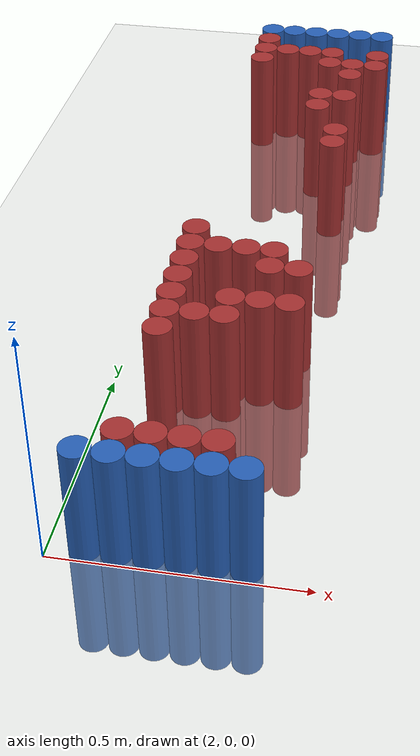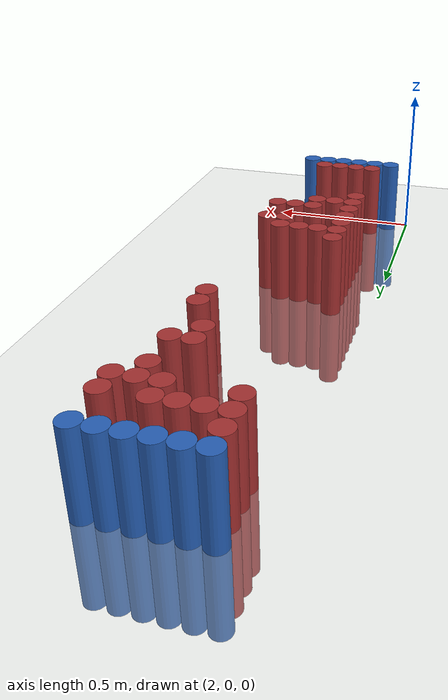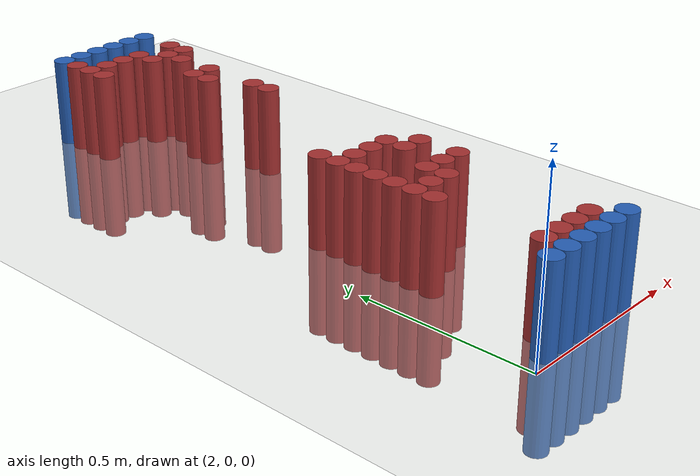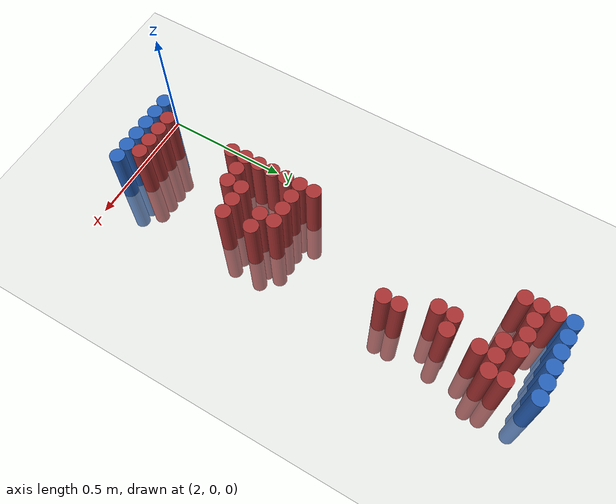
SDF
<sdf version="1.6">
 <world name="default">
  <model name="ground_plane">
   <static>1</static>
   <link name="link">
    <collision name="collision">
     <geometry><plane><normal>0 0 1</normal><size>100 100</size></plane></geometry>
     <surface><friction><ode><mu>100</mu><mu2>50</mu2></ode></friction></surface>
    </collision>
    <visual name="visual">
     <cast_shadows>0</cast_shadows>
     <geometry><plane><normal>0 0 1</normal><size>100 100</size></plane></geometry>
     <material>
      <script><uri>file://media/materials/scripts/gazebo.material</uri><name>Gazebo/Grey</name></script>
     </material>
    </visual>
   </link>
  </model>
  <model name="unit_cylinder_96">
   <static>1</static>
   <pose>2.130000 1.770000 0.000000 0.000000 0.000000 0.000000</pose>
   <link name="link">
    <inertial>
     <mass>1</mass>
     <inertia><ixx>0.145833</ixx><ixy>0</ixy><ixz>0</ixz><iyy>0.145833</iyy><iyz>0</iyz><izz>0.125</izz></inertia>
    </inertial>
    <collision name="collision">
     <geometry><cylinder><radius>0.030000</radius><length>0.5</length></cylinder></geometry>
    </collision>
    <visual name="visual">
     <geometry><cylinder><radius>0.030000</radius><length>0.5</length></cylinder></geometry>
     <material>
      <ambient>0.152000 0.379000 0.720000 1</ambient>
      <diffuse>0.152000 0.379000 0.720000 1</diffuse>
     </material>
     <material>
      <script><name>Gazebo/Grey</name><uri>file://media/materials/scripts/gazebo.material</uri></script>
     </material>
    </visual>
   </link>
  </model>
  <model name="unit_cylinder_97">
   <static>1</static>
   <pose>2.190000 1.770000 0.000000 0.000000 0.000000 0.000000</pose>
   <link name="link">
    <inertial>
     <mass>1</mass>
     <inertia><ixx>0.145833</ixx><ixy>0</ixy><ixz>0</ixz><iyy>0.145833</iyy><iyz>0</iyz><izz>0.125</izz></inertia>
    </inertial>
    <collision name="collision">
     <geometry><cylinder><radius>0.030000</radius><length>0.5</length></cylinder></geometry>
    </collision>
    <visual name="visual">
     <geometry><cylinder><radius>0.030000</radius><length>0.5</length></cylinder></geometry>
     <material>
      <ambient>0.152000 0.379000 0.720000 1</ambient>
      <diffuse>0.152000 0.379000 0.720000 1</diffuse>
     </material>
     <material>
      <script><name>Gazebo/Grey</name><uri>file://media/materials/scripts/gazebo.material</uri></script>
     </material>
    </visual>
   </link>
  </model>
  <model name="unit_cylinder_98">
   <static>1</static>
   <pose>2.250000 1.770000 0.000000 0.000000 0.000000 0.000000</pose>
   <link name="link">
    <inertial>
     <mass>1</mass>
     <inertia><ixx>0.145833</ixx><ixy>0</ixy><ixz>0</ixz><iyy>0.145833</iyy><iyz>0</iyz><izz>0.125</izz></inertia>
    </inertial>
    <collision name="collision">
     <geometry><cylinder><radius>0.030000</radius><length>0.5</length></cylinder></geometry>
    </collision>
    <visual name="visual">
     <geometry><cylinder><radius>0.030000</radius><length>0.5</length></cylinder></geometry>
     <material>
      <ambient>0.152000 0.379000 0.720000 1</ambient>
      <diffuse>0.152000 0.379000 0.720000 1</diffuse>
     </material>
     <material>
      <script><name>Gazebo/Grey</name><uri>file://media/materials/scripts/gazebo.material</uri></script>
     </material>
    </visual>
   </link>
  </model>
  <model name="unit_cylinder_99">
   <static>1</static>
   <pose>2.310000 1.770000 0.000000 0.000000 0.000000 0.000000</pose>
   <link name="link">
    <inertial>
     <mass>1</mass>
     <inertia><ixx>0.145833</ixx><ixy>0</ixy><ixz>0</ixz><iyy>0.145833</iyy><iyz>0</iyz><izz>0.125</izz></inertia>
    </inertial>
    <collision name="collision">
     <geometry><cylinder><radius>0.030000</radius><length>0.5</length></cylinder></geometry>
    </collision>
    <visual name="visual">
     <geometry><cylinder><radius>0.030000</radius><length>0.5</length></cylinder></geometry>
     <material>
      <ambient>0.152000 0.379000 0.720000 1</ambient>
      <diffuse>0.152000 0.379000 0.720000 1</diffuse>
     </material>
     <material>
      <script><name>Gazebo/Grey</name><uri>file://media/materials/scripts/gazebo.material</uri></script>
     </material>
    </visual>
   </link>
  </model>
  <model name="unit_cylinder_100">
   <static>1</static>
   <pose>2.370000 1.770000 0.000000 0.000000 0.000000 0.000000</pose>
   <link name="link">
    <inertial>
     <mass>1</mass>
     <inertia><ixx>0.145833</ixx><ixy>0</ixy><ixz>0</ixz><iyy>0.145833</iyy><iyz>0</iyz><izz>0.125</izz></inertia>
    </inertial>
    <collision name="collision">
     <geometry><cylinder><radius>0.030000</radius><length>0.5</length></cylinder></geometry>
    </collision>
    <visual name="visual">
     <geometry><cylinder><radius>0.030000</radius><length>0.5</length></cylinder></geometry>
     <material>
      <ambient>0.152000 0.379000 0.720000 1</ambient>
      <diffuse>0.152000 0.379000 0.720000 1</diffuse>
     </material>
     <material>
      <script><name>Gazebo/Grey</name><uri>file://media/materials/scripts/gazebo.material</uri></script>
     </material>
    </visual>
   </link>
  </model>
  <model name="unit_cylinder_101">
   <static>1</static>
   <pose>2.430000 1.770000 0.000000 0.000000 0.000000 0.000000</pose>
   <link name="link">
    <inertial>
     <mass>1</mass>
     <inertia><ixx>0.145833</ixx><ixy>0</ixy><ixz>0</ixz><iyy>0.145833</iyy><iyz>0</iyz><izz>0.125</izz></inertia>
    </inertial>
    <collision name="collision">
     <geometry><cylinder><radius>0.030000</radius><length>0.5</length></cylinder></geometry>
    </collision>
    <visual name="visual">
     <geometry><cylinder><radius>0.030000</radius><length>0.5</length></cylinder></geometry>
     <material>
      <ambient>0.152000 0.379000 0.720000 1</ambient>
      <diffuse>0.152000 0.379000 0.720000 1</diffuse>
     </material>
     <material>
      <script><name>Gazebo/Grey</name><uri>file://media/materials/scripts/gazebo.material</uri></script>
     </material>
    </visual>
   </link>
  </model>
  <model name="unit_cylinder_125">
   <static>1</static>
   <pose>2.130000 1.710000 0.000000 0.000000 0.000000 0.000000</pose>
   <link name="link">
    <inertial>
     <mass>1</mass>
     <inertia><ixx>0.145833</ixx><ixy>0</ixy><ixz>0</ixz><iyy>0.145833</iyy><iyz>0</iyz><izz>0.125</izz></inertia>
    </inertial>
    <collision name="collision">
     <geometry><cylinder><radius>0.030000</radius><length>0.5</length></cylinder></geometry>
    </collision>
    <visual name="visual">
     <geometry><cylinder><radius>0.030000</radius><length>0.5</length></cylinder></geometry>
     <material>
      <ambient>0.648000 0.192000 0.192000 1</ambient>
      <diffuse>0.648000 0.192000 0.192000 1</diffuse>
     </material>
     <material>
      <script><name>Gazebo/Grey</name><uri>file://media/materials/scripts/gazebo.material</uri></script>
     </material>
    </visual>
   </link>
  </model>
  <model name="unit_cylinder_137">
   <static>1</static>
   <pose>2.130000 1.650000 0.000000 0.000000 0.000000 0.000000</pose>
   <link name="link">
    <inertial>
     <mass>1</mass>
     <inertia><ixx>0.145833</ixx><ixy>0</ixy><ixz>0</ixz><iyy>0.145833</iyy><iyz>0</iyz><izz>0.125</izz></inertia>
    </inertial>
    <collision name="collision">
     <geometry><cylinder><radius>0.030000</radius><length>0.5</length></cylinder></geometry>
    </collision>
    <visual name="visual">
     <geometry><cylinder><radius>0.030000</radius><length>0.5</length></cylinder></geometry>
     <material>
      <ambient>0.648000 0.192000 0.192000 1</ambient>
      <diffuse>0.648000 0.192000 0.192000 1</diffuse>
     </material>
     <material>
      <script><name>Gazebo/Grey</name><uri>file://media/materials/scripts/gazebo.material</uri></script>
     </material>
    </visual>
   </link>
  </model>
  <model name="unit_cylinder_138">
   <static>1</static>
   <pose>2.190000 1.650000 0.000000 0.000000 0.000000 0.000000</pose>
   <link name="link">
    <inertial>
     <mass>1</mass>
     <inertia><ixx>0.145833</ixx><ixy>0</ixy><ixz>0</ixz><iyy>0.145833</iyy><iyz>0</iyz><izz>0.125</izz></inertia>
    </inertial>
    <collision name="collision">
     <geometry><cylinder><radius>0.030000</radius><length>0.5</length></cylinder></geometry>
    </collision>
    <visual name="visual">
     <geometry><cylinder><radius>0.030000</radius><length>0.5</length></cylinder></geometry>
     <material>
      <ambient>0.648000 0.192000 0.192000 1</ambient>
      <diffuse>0.648000 0.192000 0.192000 1</diffuse>
     </material>
     <material>
      <script><name>Gazebo/Grey</name><uri>file://media/materials/scripts/gazebo.material</uri></script>
     </material>
    </visual>
   </link>
  </model>
  <model name="unit_cylinder_139">
   <static>1</static>
   <pose>2.250000 1.650000 0.000000 0.000000 0.000000 0.000000</pose>
   <link name="link">
    <inertial>
     <mass>1</mass>
     <inertia><ixx>0.145833</ixx><ixy>0</ixy><ixz>0</ixz><iyy>0.145833</iyy><iyz>0</iyz><izz>0.125</izz></inertia>
    </inertial>
    <collision name="collision">
     <geometry><cylinder><radius>0.030000</radius><length>0.5</length></cylinder></geometry>
    </collision>
    <visual name="visual">
     <geometry><cylinder><radius>0.030000</radius><length>0.5</length></cylinder></geometry>
     <material>
      <ambient>0.648000 0.192000 0.192000 1</ambient>
      <diffuse>0.648000 0.192000 0.192000 1</diffuse>
     </material>
     <material>
      <script><name>Gazebo/Grey</name><uri>file://media/materials/scripts/gazebo.material</uri></script>
     </material>
    </visual>
   </link>
  </model>
  <model name="unit_cylinder_140">
   <static>1</static>
   <pose>2.310000 1.650000 0.000000 0.000000 0.000000 0.000000</pose>
   <link name="link">
    <inertial>
     <mass>1</mass>
     <inertia><ixx>0.145833</ixx><ixy>0</ixy><ixz>0</ixz><iyy>0.145833</iyy><iyz>0</iyz><izz>0.125</izz></inertia>
    </inertial>
    <collision name="collision">
     <geometry><cylinder><radius>0.030000</radius><length>0.5</length></cylinder></geometry>
    </collision>
    <visual name="visual">
     <geometry><cylinder><radius>0.030000</radius><length>0.5</length></cylinder></geometry>
     <material>
      <ambient>0.648000 0.192000 0.192000 1</ambient>
      <diffuse>0.648000 0.192000 0.192000 1</diffuse>
     </material>
     <material>
      <script><name>Gazebo/Grey</name><uri>file://media/materials/scripts/gazebo.material</uri></script>
     </material>
    </visual>
   </link>
  </model>
  <model name="unit_cylinder_141">
   <static>1</static>
   <pose>2.430000 1.650000 0.000000 0.000000 0.000000 0.000000</pose>
   <link name="link">
    <inertial>
     <mass>1</mass>
     <inertia><ixx>0.145833</ixx><ixy>0</ixy><ixz>0</ixz><iyy>0.145833</iyy><iyz>0</iyz><izz>0.125</izz></inertia>
    </inertial>
    <collision name="collision">
     <geometry><cylinder><radius>0.030000</radius><length>0.5</length></cylinder></geometry>
    </collision>
    <visual name="visual">
     <geometry><cylinder><radius>0.030000</radius><length>0.5</length></cylinder></geometry>
     <material>
      <ambient>0.648000 0.192000 0.192000 1</ambient>
      <diffuse>0.648000 0.192000 0.192000 1</diffuse>
     </material>
     <material>
      <script><name>Gazebo/Grey</name><uri>file://media/materials/scripts/gazebo.material</uri></script>
     </material>
    </visual>
   </link>
  </model>
  <model name="unit_cylinder_150">
   <static>1</static>
   <pose>2.130000 1.590000 0.000000 0.000000 0.000000 0.000000</pose>
   <link name="link">
    <inertial>
     <mass>1</mass>
     <inertia><ixx>0.145833</ixx><ixy>0</ixy><ixz>0</ixz><iyy>0.145833</iyy><iyz>0</iyz><izz>0.125</izz></inertia>
    </inertial>
    <collision name="collision">
     <geometry><cylinder><radius>0.030000</radius><length>0.5</length></cylinder></geometry>
    </collision>
    <visual name="visual">
     <geometry><cylinder><radius>0.030000</radius><length>0.5</length></cylinder></geometry>
     <material>
      <ambient>0.648000 0.192000 0.192000 1</ambient>
      <diffuse>0.648000 0.192000 0.192000 1</diffuse>
     </material>
     <material>
      <script><name>Gazebo/Grey</name><uri>file://media/materials/scripts/gazebo.material</uri></script>
     </material>
    </visual>
   </link>
  </model>
  <model name="unit_cylinder_151">
   <static>1</static>
   <pose>2.310000 1.590000 0.000000 0.000000 0.000000 0.000000</pose>
   <link name="link">
    <inertial>
     <mass>1</mass>
     <inertia><ixx>0.145833</ixx><ixy>0</ixy><ixz>0</ixz><iyy>0.145833</iyy><iyz>0</iyz><izz>0.125</izz></inertia>
    </inertial>
    <collision name="collision">
     <geometry><cylinder><radius>0.030000</radius><length>0.5</length></cylinder></geometry>
    </collision>
    <visual name="visual">
     <geometry><cylinder><radius>0.030000</radius><length>0.5</length></cylinder></geometry>
     <material>
      <ambient>0.648000 0.192000 0.192000 1</ambient>
      <diffuse>0.648000 0.192000 0.192000 1</diffuse>
     </material>
     <material>
      <script><name>Gazebo/Grey</name><uri>file://media/materials/scripts/gazebo.material</uri></script>
     </material>
    </visual>
   </link>
  </model>
  <model name="unit_cylinder_152">
   <static>1</static>
   <pose>2.370000 1.590000 0.000000 0.000000 0.000000 0.000000</pose>
   <link name="link">
    <inertial>
     <mass>1</mass>
     <inertia><ixx>0.145833</ixx><ixy>0</ixy><ixz>0</ixz><iyy>0.145833</iyy><iyz>0</iyz><izz>0.125</izz></inertia>
    </inertial>
    <collision name="collision">
     <geometry><cylinder><radius>0.030000</radius><length>0.5</length></cylinder></geometry>
    </collision>
    <visual name="visual">
     <geometry><cylinder><radius>0.030000</radius><length>0.5</length></cylinder></geometry>
     <material>
      <ambient>0.648000 0.192000 0.192000 1</ambient>
      <diffuse>0.648000 0.192000 0.192000 1</diffuse>
     </material>
     <material>
      <script><name>Gazebo/Grey</name><uri>file://media/materials/scripts/gazebo.material</uri></script>
     </material>
    </visual>
   </link>
  </model>
  <model name="unit_cylinder_153">
   <static>1</static>
   <pose>2.430000 1.590000 0.000000 0.000000 0.000000 0.000000</pose>
   <link name="link">
    <inertial>
     <mass>1</mass>
     <inertia><ixx>0.145833</ixx><ixy>0</ixy><ixz>0</ixz><iyy>0.145833</iyy><iyz>0</iyz><izz>0.125</izz></inertia>
    </inertial>
    <collision name="collision">
     <geometry><cylinder><radius>0.030000</radius><length>0.5</length></cylinder></geometry>
    </collision>
    <visual name="visual">
     <geometry><cylinder><radius>0.030000</radius><length>0.5</length></cylinder></geometry>
     <material>
      <ambient>0.648000 0.192000 0.192000 1</ambient>
      <diffuse>0.648000 0.192000 0.192000 1</diffuse>
     </material>
     <material>
      <script><name>Gazebo/Grey</name><uri>file://media/materials/scripts/gazebo.material</uri></script>
     </material>
    </visual>
   </link>
  </model>
  <model name="unit_cylinder_159">
   <static>1</static>
   <pose>2.370000 1.530000 0.000000 0.000000 0.000000 0.000000</pose>
   <link name="link">
    <inertial>
     <mass>1</mass>
     <inertia><ixx>0.145833</ixx><ixy>0</ixy><ixz>0</ixz><iyy>0.145833</iyy><iyz>0</iyz><izz>0.125</izz></inertia>
    </inertial>
    <collision name="collision">
     <geometry><cylinder><radius>0.030000</radius><length>0.5</length></cylinder></geometry>
    </collision>
    <visual name="visual">
     <geometry><cylinder><radius>0.030000</radius><length>0.5</length></cylinder></geometry>
     <material>
      <ambient>0.648000 0.192000 0.192000 1</ambient>
      <diffuse>0.648000 0.192000 0.192000 1</diffuse>
     </material>
     <material>
      <script><name>Gazebo/Grey</name><uri>file://media/materials/scripts/gazebo.material</uri></script>
     </material>
    </visual>
   </link>
  </model>
  <model name="unit_cylinder_176">
   <static>1</static>
   <pose>2.310000 1.410000 0.000000 0.000000 0.000000 0.000000</pose>
   <link name="link">
    <inertial>
     <mass>1</mass>
     <inertia><ixx>0.145833</ixx><ixy>0</ixy><ixz>0</ixz><iyy>0.145833</iyy><iyz>0</iyz><izz>0.125</izz></inertia>
    </inertial>
    <collision name="collision">
     <geometry><cylinder><radius>0.030000</radius><length>0.5</length></cylinder></geometry>
    </collision>
    <visual name="visual">
     <geometry><cylinder><radius>0.030000</radius><length>0.5</length></cylinder></geometry>
     <material>
      <ambient>0.648000 0.192000 0.192000 1</ambient>
      <diffuse>0.648000 0.192000 0.192000 1</diffuse>
     </material>
     <material>
      <script><name>Gazebo/Grey</name><uri>file://media/materials/scripts/gazebo.material</uri></script>
     </material>
    </visual>
   </link>
  </model>
  <model name="unit_cylinder_177">
   <static>1</static>
   <pose>2.370000 1.410000 0.000000 0.000000 0.000000 0.000000</pose>
   <link name="link">
    <inertial>
     <mass>1</mass>
     <inertia><ixx>0.145833</ixx><ixy>0</ixy><ixz>0</ixz><iyy>0.145833</iyy><iyz>0</iyz><izz>0.125</izz></inertia>
    </inertial>
    <collision name="collision">
     <geometry><cylinder><radius>0.030000</radius><length>0.5</length></cylinder></geometry>
    </collision>
    <visual name="visual">
     <geometry><cylinder><radius>0.030000</radius><length>0.5</length></cylinder></geometry>
     <material>
      <ambient>0.648000 0.192000 0.192000 1</ambient>
      <diffuse>0.648000 0.192000 0.192000 1</diffuse>
     </material>
     <material>
      <script><name>Gazebo/Grey</name><uri>file://media/materials/scripts/gazebo.material</uri></script>
     </material>
    </visual>
   </link>
  </model>
  <model name="unit_cylinder_183">
   <static>1</static>
   <pose>2.310000 1.350000 0.000000 0.000000 0.000000 0.000000</pose>
   <link name="link">
    <inertial>
     <mass>1</mass>
     <inertia><ixx>0.145833</ixx><ixy>0</ixy><ixz>0</ixz><iyy>0.145833</iyy><iyz>0</iyz><izz>0.125</izz></inertia>
    </inertial>
    <collision name="collision">
     <geometry><cylinder><radius>0.030000</radius><length>0.5</length></cylinder></geometry>
    </collision>
    <visual name="visual">
     <geometry><cylinder><radius>0.030000</radius><length>0.5</length></cylinder></geometry>
     <material>
      <ambient>0.648000 0.192000 0.192000 1</ambient>
      <diffuse>0.648000 0.192000 0.192000 1</diffuse>
     </material>
     <material>
      <script><name>Gazebo/Grey</name><uri>file://media/materials/scripts/gazebo.material</uri></script>
     </material>
    </visual>
   </link>
  </model>
  <model name="unit_cylinder_200">
   <static>1</static>
   <pose>2.370000 1.230000 0.000000 0.000000 0.000000 0.000000</pose>
   <link name="link">
    <inertial>
     <mass>1</mass>
     <inertia><ixx>0.145833</ixx><ixy>0</ixy><ixz>0</ixz><iyy>0.145833</iyy><iyz>0</iyz><izz>0.125</izz></inertia>
    </inertial>
    <collision name="collision">
     <geometry><cylinder><radius>0.030000</radius><length>0.5</length></cylinder></geometry>
    </collision>
    <visual name="visual">
     <geometry><cylinder><radius>0.030000</radius><length>0.5</length></cylinder></geometry>
     <material>
      <ambient>0.648000 0.192000 0.192000 1</ambient>
      <diffuse>0.648000 0.192000 0.192000 1</diffuse>
     </material>
     <material>
      <script><name>Gazebo/Grey</name><uri>file://media/materials/scripts/gazebo.material</uri></script>
     </material>
    </visual>
   </link>
  </model>
  <model name="unit_cylinder_206">
   <static>1</static>
   <pose>2.370000 1.170000 0.000000 0.000000 0.000000 0.000000</pose>
   <link name="link">
    <inertial>
     <mass>1</mass>
     <inertia><ixx>0.145833</ixx><ixy>0</ixy><ixz>0</ixz><iyy>0.145833</iyy><iyz>0</iyz><izz>0.125</izz></inertia>
    </inertial>
    <collision name="collision">
     <geometry><cylinder><radius>0.030000</radius><length>0.5</length></cylinder></geometry>
    </collision>
    <visual name="visual">
     <geometry><cylinder><radius>0.030000</radius><length>0.5</length></cylinder></geometry>
     <material>
      <ambient>0.648000 0.192000 0.192000 1</ambient>
      <diffuse>0.648000 0.192000 0.192000 1</diffuse>
     </material>
     <material>
      <script><name>Gazebo/Grey</name><uri>file://media/materials/scripts/gazebo.material</uri></script>
     </material>
    </visual>
   </link>
  </model>
  <model name="unit_cylinder_218">
   <static>1</static>
   <pose>2.130000 0.750000 0.000000 0.000000 0.000000 0.000000</pose>
   <link name="link">
    <inertial>
     <mass>1</mass>
     <inertia><ixx>0.145833</ixx><ixy>0</ixy><ixz>0</ixz><iyy>0.145833</iyy><iyz>0</iyz><izz>0.125</izz></inertia>
    </inertial>
    <collision name="collision">
     <geometry><cylinder><radius>0.030000</radius><length>0.5</length></cylinder></geometry>
    </collision>
    <visual name="visual">
     <geometry><cylinder><radius>0.030000</radius><length>0.5</length></cylinder></geometry>
     <material>
      <ambient>0.648000 0.192000 0.192000 1</ambient>
      <diffuse>0.648000 0.192000 0.192000 1</diffuse>
     </material>
     <material>
      <script><name>Gazebo/Grey</name><uri>file://media/materials/scripts/gazebo.material</uri></script>
     </material>
    </visual>
   </link>
  </model>
  <model name="unit_cylinder_221">
   <static>1</static>
   <pose>2.130000 0.690000 0.000000 0.000000 0.000000 0.000000</pose>
   <link name="link">
    <inertial>
     <mass>1</mass>
     <inertia><ixx>0.145833</ixx><ixy>0</ixy><ixz>0</ixz><iyy>0.145833</iyy><iyz>0</iyz><izz>0.125</izz></inertia>
    </inertial>
    <collision name="collision">
     <geometry><cylinder><radius>0.030000</radius><length>0.5</length></cylinder></geometry>
    </collision>
    <visual name="visual">
     <geometry><cylinder><radius>0.030000</radius><length>0.5</length></cylinder></geometry>
     <material>
      <ambient>0.648000 0.192000 0.192000 1</ambient>
      <diffuse>0.648000 0.192000 0.192000 1</diffuse>
     </material>
     <material>
      <script><name>Gazebo/Grey</name><uri>file://media/materials/scripts/gazebo.material</uri></script>
     </material>
    </visual>
   </link>
  </model>
  <model name="unit_cylinder_222">
   <static>1</static>
   <pose>2.190000 0.690000 0.000000 0.000000 0.000000 0.000000</pose>
   <link name="link">
    <inertial>
     <mass>1</mass>
     <inertia><ixx>0.145833</ixx><ixy>0</ixy><ixz>0</ixz><iyy>0.145833</iyy><iyz>0</iyz><izz>0.125</izz></inertia>
    </inertial>
    <collision name="collision">
     <geometry><cylinder><radius>0.030000</radius><length>0.5</length></cylinder></geometry>
    </collision>
    <visual name="visual">
     <geometry><cylinder><radius>0.030000</radius><length>0.5</length></cylinder></geometry>
     <material>
      <ambient>0.648000 0.192000 0.192000 1</ambient>
      <diffuse>0.648000 0.192000 0.192000 1</diffuse>
     </material>
     <material>
      <script><name>Gazebo/Grey</name><uri>file://media/materials/scripts/gazebo.material</uri></script>
     </material>
    </visual>
   </link>
  </model>
  <model name="unit_cylinder_223">
   <static>1</static>
   <pose>2.250000 0.690000 0.000000 0.000000 0.000000 0.000000</pose>
   <link name="link">
    <inertial>
     <mass>1</mass>
     <inertia><ixx>0.145833</ixx><ixy>0</ixy><ixz>0</ixz><iyy>0.145833</iyy><iyz>0</iyz><izz>0.125</izz></inertia>
    </inertial>
    <collision name="collision">
     <geometry><cylinder><radius>0.030000</radius><length>0.5</length></cylinder></geometry>
    </collision>
    <visual name="visual">
     <geometry><cylinder><radius>0.030000</radius><length>0.5</length></cylinder></geometry>
     <material>
      <ambient>0.648000 0.192000 0.192000 1</ambient>
      <diffuse>0.648000 0.192000 0.192000 1</diffuse>
     </material>
     <material>
      <script><name>Gazebo/Grey</name><uri>file://media/materials/scripts/gazebo.material</uri></script>
     </material>
    </visual>
   </link>
  </model>
  <model name="unit_cylinder_224">
   <static>1</static>
   <pose>2.310000 0.690000 0.000000 0.000000 0.000000 0.000000</pose>
   <link name="link">
    <inertial>
     <mass>1</mass>
     <inertia><ixx>0.145833</ixx><ixy>0</ixy><ixz>0</ixz><iyy>0.145833</iyy><iyz>0</iyz><izz>0.125</izz></inertia>
    </inertial>
    <collision name="collision">
     <geometry><cylinder><radius>0.030000</radius><length>0.5</length></cylinder></geometry>
    </collision>
    <visual name="visual">
     <geometry><cylinder><radius>0.030000</radius><length>0.5</length></cylinder></geometry>
     <material>
      <ambient>0.648000 0.192000 0.192000 1</ambient>
      <diffuse>0.648000 0.192000 0.192000 1</diffuse>
     </material>
     <material>
      <script><name>Gazebo/Grey</name><uri>file://media/materials/scripts/gazebo.material</uri></script>
     </material>
    </visual>
   </link>
  </model>
  <model name="unit_cylinder_228">
   <static>1</static>
   <pose>2.130000 0.630000 0.000000 0.000000 0.000000 0.000000</pose>
   <link name="link">
    <inertial>
     <mass>1</mass>
     <inertia><ixx>0.145833</ixx><ixy>0</ixy><ixz>0</ixz><iyy>0.145833</iyy><iyz>0</iyz><izz>0.125</izz></inertia>
    </inertial>
    <collision name="collision">
     <geometry><cylinder><radius>0.030000</radius><length>0.5</length></cylinder></geometry>
    </collision>
    <visual name="visual">
     <geometry><cylinder><radius>0.030000</radius><length>0.5</length></cylinder></geometry>
     <material>
      <ambient>0.648000 0.192000 0.192000 1</ambient>
      <diffuse>0.648000 0.192000 0.192000 1</diffuse>
     </material>
     <material>
      <script><name>Gazebo/Grey</name><uri>file://media/materials/scripts/gazebo.material</uri></script>
     </material>
    </visual>
   </link>
  </model>
  <model name="unit_cylinder_229">
   <static>1</static>
   <pose>2.310000 0.630000 0.000000 0.000000 0.000000 0.000000</pose>
   <link name="link">
    <inertial>
     <mass>1</mass>
     <inertia><ixx>0.145833</ixx><ixy>0</ixy><ixz>0</ixz><iyy>0.145833</iyy><iyz>0</iyz><izz>0.125</izz></inertia>
    </inertial>
    <collision name="collision">
     <geometry><cylinder><radius>0.030000</radius><length>0.5</length></cylinder></geometry>
    </collision>
    <visual name="visual">
     <geometry><cylinder><radius>0.030000</radius><length>0.5</length></cylinder></geometry>
     <material>
      <ambient>0.648000 0.192000 0.192000 1</ambient>
      <diffuse>0.648000 0.192000 0.192000 1</diffuse>
     </material>
     <material>
      <script><name>Gazebo/Grey</name><uri>file://media/materials/scripts/gazebo.material</uri></script>
     </material>
    </visual>
   </link>
  </model>
  <model name="unit_cylinder_230">
   <static>1</static>
   <pose>2.370000 0.630000 0.000000 0.000000 0.000000 0.000000</pose>
   <link name="link">
    <inertial>
     <mass>1</mass>
     <inertia><ixx>0.145833</ixx><ixy>0</ixy><ixz>0</ixz><iyy>0.145833</iyy><iyz>0</iyz><izz>0.125</izz></inertia>
    </inertial>
    <collision name="collision">
     <geometry><cylinder><radius>0.030000</radius><length>0.5</length></cylinder></geometry>
    </collision>
    <visual name="visual">
     <geometry><cylinder><radius>0.030000</radius><length>0.5</length></cylinder></geometry>
     <material>
      <ambient>0.648000 0.192000 0.192000 1</ambient>
      <diffuse>0.648000 0.192000 0.192000 1</diffuse>
     </material>
     <material>
      <script><name>Gazebo/Grey</name><uri>file://media/materials/scripts/gazebo.material</uri></script>
     </material>
    </visual>
   </link>
  </model>
  <model name="unit_cylinder_236">
   <static>1</static>
   <pose>2.130000 0.570000 0.000000 0.000000 0.000000 0.000000</pose>
   <link name="link">
    <inertial>
     <mass>1</mass>
     <inertia><ixx>0.145833</ixx><ixy>0</ixy><ixz>0</ixz><iyy>0.145833</iyy><iyz>0</iyz><izz>0.125</izz></inertia>
    </inertial>
    <collision name="collision">
     <geometry><cylinder><radius>0.030000</radius><length>0.5</length></cylinder></geometry>
    </collision>
    <visual name="visual">
     <geometry><cylinder><radius>0.030000</radius><length>0.5</length></cylinder></geometry>
     <material>
      <ambient>0.648000 0.192000 0.192000 1</ambient>
      <diffuse>0.648000 0.192000 0.192000 1</diffuse>
     </material>
     <material>
      <script><name>Gazebo/Grey</name><uri>file://media/materials/scripts/gazebo.material</uri></script>
     </material>
    </visual>
   </link>
  </model>
  <model name="unit_cylinder_241">
   <static>1</static>
   <pose>2.130000 0.510000 0.000000 0.000000 0.000000 0.000000</pose>
   <link name="link">
    <inertial>
     <mass>1</mass>
     <inertia><ixx>0.145833</ixx><ixy>0</ixy><ixz>0</ixz><iyy>0.145833</iyy><iyz>0</iyz><izz>0.125</izz></inertia>
    </inertial>
    <collision name="collision">
     <geometry><cylinder><radius>0.030000</radius><length>0.5</length></cylinder></geometry>
    </collision>
    <visual name="visual">
     <geometry><cylinder><radius>0.030000</radius><length>0.5</length></cylinder></geometry>
     <material>
      <ambient>0.648000 0.192000 0.192000 1</ambient>
      <diffuse>0.648000 0.192000 0.192000 1</diffuse>
     </material>
     <material>
      <script><name>Gazebo/Grey</name><uri>file://media/materials/scripts/gazebo.material</uri></script>
     </material>
    </visual>
   </link>
  </model>
  <model name="unit_cylinder_242">
   <static>1</static>
   <pose>2.250000 0.510000 0.000000 0.000000 0.000000 0.000000</pose>
   <link name="link">
    <inertial>
     <mass>1</mass>
     <inertia><ixx>0.145833</ixx><ixy>0</ixy><ixz>0</ixz><iyy>0.145833</iyy><iyz>0</iyz><izz>0.125</izz></inertia>
    </inertial>
    <collision name="collision">
     <geometry><cylinder><radius>0.030000</radius><length>0.5</length></cylinder></geometry>
    </collision>
    <visual name="visual">
     <geometry><cylinder><radius>0.030000</radius><length>0.5</length></cylinder></geometry>
     <material>
      <ambient>0.648000 0.192000 0.192000 1</ambient>
      <diffuse>0.648000 0.192000 0.192000 1</diffuse>
     </material>
     <material>
      <script><name>Gazebo/Grey</name><uri>file://media/materials/scripts/gazebo.material</uri></script>
     </material>
    </visual>
   </link>
  </model>
  <model name="unit_cylinder_243">
   <static>1</static>
   <pose>2.310000 0.510000 0.000000 0.000000 0.000000 0.000000</pose>
   <link name="link">
    <inertial>
     <mass>1</mass>
     <inertia><ixx>0.145833</ixx><ixy>0</ixy><ixz>0</ixz><iyy>0.145833</iyy><iyz>0</iyz><izz>0.125</izz></inertia>
    </inertial>
    <collision name="collision">
     <geometry><cylinder><radius>0.030000</radius><length>0.5</length></cylinder></geometry>
    </collision>
    <visual name="visual">
     <geometry><cylinder><radius>0.030000</radius><length>0.5</length></cylinder></geometry>
     <material>
      <ambient>0.648000 0.192000 0.192000 1</ambient>
      <diffuse>0.648000 0.192000 0.192000 1</diffuse>
     </material>
     <material>
      <script><name>Gazebo/Grey</name><uri>file://media/materials/scripts/gazebo.material</uri></script>
     </material>
    </visual>
   </link>
  </model>
  <model name="unit_cylinder_244">
   <static>1</static>
   <pose>2.370000 0.510000 0.000000 0.000000 0.000000 0.000000</pose>
   <link name="link">
    <inertial>
     <mass>1</mass>
     <inertia><ixx>0.145833</ixx><ixy>0</ixy><ixz>0</ixz><iyy>0.145833</iyy><iyz>0</iyz><izz>0.125</izz></inertia>
    </inertial>
    <collision name="collision">
     <geometry><cylinder><radius>0.030000</radius><length>0.5</length></cylinder></geometry>
    </collision>
    <visual name="visual">
     <geometry><cylinder><radius>0.030000</radius><length>0.5</length></cylinder></geometry>
     <material>
      <ambient>0.648000 0.192000 0.192000 1</ambient>
      <diffuse>0.648000 0.192000 0.192000 1</diffuse>
     </material>
     <material>
      <script><name>Gazebo/Grey</name><uri>file://media/materials/scripts/gazebo.material</uri></script>
     </material>
    </visual>
   </link>
  </model>
  <model name="unit_cylinder_252">
   <static>1</static>
   <pose>2.130000 0.450000 0.000000 0.000000 0.000000 0.000000</pose>
   <link name="link">
    <inertial>
     <mass>1</mass>
     <inertia><ixx>0.145833</ixx><ixy>0</ixy><ixz>0</ixz><iyy>0.145833</iyy><iyz>0</iyz><izz>0.125</izz></inertia>
    </inertial>
    <collision name="collision">
     <geometry><cylinder><radius>0.030000</radius><length>0.5</length></cylinder></geometry>
    </collision>
    <visual name="visual">
     <geometry><cylinder><radius>0.030000</radius><length>0.5</length></cylinder></geometry>
     <material>
      <ambient>0.648000 0.192000 0.192000 1</ambient>
      <diffuse>0.648000 0.192000 0.192000 1</diffuse>
     </material>
     <material>
      <script><name>Gazebo/Grey</name><uri>file://media/materials/scripts/gazebo.material</uri></script>
     </material>
    </visual>
   </link>
  </model>
  <model name="unit_cylinder_253">
   <static>1</static>
   <pose>2.190000 0.450000 0.000000 0.000000 0.000000 0.000000</pose>
   <link name="link">
    <inertial>
     <mass>1</mass>
     <inertia><ixx>0.145833</ixx><ixy>0</ixy><ixz>0</ixz><iyy>0.145833</iyy><iyz>0</iyz><izz>0.125</izz></inertia>
    </inertial>
    <collision name="collision">
     <geometry><cylinder><radius>0.030000</radius><length>0.5</length></cylinder></geometry>
    </collision>
    <visual name="visual">
     <geometry><cylinder><radius>0.030000</radius><length>0.5</length></cylinder></geometry>
     <material>
      <ambient>0.648000 0.192000 0.192000 1</ambient>
      <diffuse>0.648000 0.192000 0.192000 1</diffuse>
     </material>
     <material>
      <script><name>Gazebo/Grey</name><uri>file://media/materials/scripts/gazebo.material</uri></script>
     </material>
    </visual>
   </link>
  </model>
  <model name="unit_cylinder_254">
   <static>1</static>
   <pose>2.250000 0.450000 0.000000 0.000000 0.000000 0.000000</pose>
   <link name="link">
    <inertial>
     <mass>1</mass>
     <inertia><ixx>0.145833</ixx><ixy>0</ixy><ixz>0</ixz><iyy>0.145833</iyy><iyz>0</iyz><izz>0.125</izz></inertia>
    </inertial>
    <collision name="collision">
     <geometry><cylinder><radius>0.030000</radius><length>0.5</length></cylinder></geometry>
    </collision>
    <visual name="visual">
     <geometry><cylinder><radius>0.030000</radius><length>0.5</length></cylinder></geometry>
     <material>
      <ambient>0.648000 0.192000 0.192000 1</ambient>
      <diffuse>0.648000 0.192000 0.192000 1</diffuse>
     </material>
     <material>
      <script><name>Gazebo/Grey</name><uri>file://media/materials/scripts/gazebo.material</uri></script>
     </material>
    </visual>
   </link>
  </model>
  <model name="unit_cylinder_266">
   <static>1</static>
   <pose>2.130000 0.390000 0.000000 0.000000 0.000000 0.000000</pose>
   <link name="link">
    <inertial>
     <mass>1</mass>
     <inertia><ixx>0.145833</ixx><ixy>0</ixy><ixz>0</ixz><iyy>0.145833</iyy><iyz>0</iyz><izz>0.125</izz></inertia>
    </inertial>
    <collision name="collision">
     <geometry><cylinder><radius>0.030000</radius><length>0.5</length></cylinder></geometry>
    </collision>
    <visual name="visual">
     <geometry><cylinder><radius>0.030000</radius><length>0.5</length></cylinder></geometry>
     <material>
      <ambient>0.648000 0.192000 0.192000 1</ambient>
      <diffuse>0.648000 0.192000 0.192000 1</diffuse>
     </material>
     <material>
      <script><name>Gazebo/Grey</name><uri>file://media/materials/scripts/gazebo.material</uri></script>
     </material>
    </visual>
   </link>
  </model>
  <model name="unit_cylinder_295">
   <static>1</static>
   <pose>2.130000 0.090000 0.000000 0.000000 0.000000 0.000000</pose>
   <link name="link">
    <inertial>
     <mass>1</mass>
     <inertia><ixx>0.145833</ixx><ixy>0</ixy><ixz>0</ixz><iyy>0.145833</iyy><iyz>0</iyz><izz>0.125</izz></inertia>
    </inertial>
    <collision name="collision">
     <geometry><cylinder><radius>0.030000</radius><length>0.5</length></cylinder></geometry>
    </collision>
    <visual name="visual">
     <geometry><cylinder><radius>0.030000</radius><length>0.5</length></cylinder></geometry>
     <material>
      <ambient>0.648000 0.192000 0.192000 1</ambient>
      <diffuse>0.648000 0.192000 0.192000 1</diffuse>
     </material>
     <material>
      <script><name>Gazebo/Grey</name><uri>file://media/materials/scripts/gazebo.material</uri></script>
     </material>
    </visual>
   </link>
  </model>
  <model name="unit_cylinder_296">
   <static>1</static>
   <pose>2.190000 0.090000 0.000000 0.000000 0.000000 0.000000</pose>
   <link name="link">
    <inertial>
     <mass>1</mass>
     <inertia><ixx>0.145833</ixx><ixy>0</ixy><ixz>0</ixz><iyy>0.145833</iyy><iyz>0</iyz><izz>0.125</izz></inertia>
    </inertial>
    <collision name="collision">
     <geometry><cylinder><radius>0.030000</radius><length>0.5</length></cylinder></geometry>
    </collision>
    <visual name="visual">
     <geometry><cylinder><radius>0.030000</radius><length>0.5</length></cylinder></geometry>
     <material>
      <ambient>0.648000 0.192000 0.192000 1</ambient>
      <diffuse>0.648000 0.192000 0.192000 1</diffuse>
     </material>
     <material>
      <script><name>Gazebo/Grey</name><uri>file://media/materials/scripts/gazebo.material</uri></script>
     </material>
    </visual>
   </link>
  </model>
  <model name="unit_cylinder_297">
   <static>1</static>
   <pose>2.250000 0.090000 0.000000 0.000000 0.000000 0.000000</pose>
   <link name="link">
    <inertial>
     <mass>1</mass>
     <inertia><ixx>0.145833</ixx><ixy>0</ixy><ixz>0</ixz><iyy>0.145833</iyy><iyz>0</iyz><izz>0.125</izz></inertia>
    </inertial>
    <collision name="collision">
     <geometry><cylinder><radius>0.030000</radius><length>0.5</length></cylinder></geometry>
    </collision>
    <visual name="visual">
     <geometry><cylinder><radius>0.030000</radius><length>0.5</length></cylinder></geometry>
     <material>
      <ambient>0.648000 0.192000 0.192000 1</ambient>
      <diffuse>0.648000 0.192000 0.192000 1</diffuse>
     </material>
     <material>
      <script><name>Gazebo/Grey</name><uri>file://media/materials/scripts/gazebo.material</uri></script>
     </material>
    </visual>
   </link>
  </model>
  <model name="unit_cylinder_298">
   <static>1</static>
   <pose>2.310000 0.090000 0.000000 0.000000 0.000000 0.000000</pose>
   <link name="link">
    <inertial>
     <mass>1</mass>
     <inertia><ixx>0.145833</ixx><ixy>0</ixy><ixz>0</ixz><iyy>0.145833</iyy><iyz>0</iyz><izz>0.125</izz></inertia>
    </inertial>
    <collision name="collision">
     <geometry><cylinder><radius>0.030000</radius><length>0.5</length></cylinder></geometry>
    </collision>
    <visual name="visual">
     <geometry><cylinder><radius>0.030000</radius><length>0.5</length></cylinder></geometry>
     <material>
      <ambient>0.648000 0.192000 0.192000 1</ambient>
      <diffuse>0.648000 0.192000 0.192000 1</diffuse>
     </material>
     <material>
      <script><name>Gazebo/Grey</name><uri>file://media/materials/scripts/gazebo.material</uri></script>
     </material>
    </visual>
   </link>
  </model>
  <model name="unit_cylinder_310">
   <static>1</static>
   <pose>2.070000 0.030000 0.000000 0.000000 0.000000 0.000000</pose>
   <link name="link">
    <inertial>
     <mass>1</mass>
     <inertia><ixx>0.145833</ixx><ixy>0</ixy><ixz>0</ixz><iyy>0.145833</iyy><iyz>0</iyz><izz>0.125</izz></inertia>
    </inertial>
    <collision name="collision">
     <geometry><cylinder><radius>0.030000</radius><length>0.5</length></cylinder></geometry>
    </collision>
    <visual name="visual">
     <geometry><cylinder><radius>0.030000</radius><length>0.5</length></cylinder></geometry>
     <material>
      <ambient>0.152000 0.379000 0.720000 1</ambient>
      <diffuse>0.152000 0.379000 0.720000 1</diffuse>
     </material>
     <material>
      <script><name>Gazebo/Grey</name><uri>file://media/materials/scripts/gazebo.material</uri></script>
     </material>
    </visual>
   </link>
  </model>
  <model name="unit_cylinder_311">
   <static>1</static>
   <pose>2.130000 0.030000 0.000000 0.000000 0.000000 0.000000</pose>
   <link name="link">
    <inertial>
     <mass>1</mass>
     <inertia><ixx>0.145833</ixx><ixy>0</ixy><ixz>0</ixz><iyy>0.145833</iyy><iyz>0</iyz><izz>0.125</izz></inertia>
    </inertial>
    <collision name="collision">
     <geometry><cylinder><radius>0.030000</radius><length>0.5</length></cylinder></geometry>
    </collision>
    <visual name="visual">
     <geometry><cylinder><radius>0.030000</radius><length>0.5</length></cylinder></geometry>
     <material>
      <ambient>0.152000 0.379000 0.720000 1</ambient>
      <diffuse>0.152000 0.379000 0.720000 1</diffuse>
     </material>
     <material>
      <script><name>Gazebo/Grey</name><uri>file://media/materials/scripts/gazebo.material</uri></script>
     </material>
    </visual>
   </link>
  </model>
  <model name="unit_cylinder_312">
   <static>1</static>
   <pose>2.190000 0.030000 0.000000 0.000000 0.000000 0.000000</pose>
   <link name="link">
    <inertial>
     <mass>1</mass>
     <inertia><ixx>0.145833</ixx><ixy>0</ixy><ixz>0</ixz><iyy>0.145833</iyy><iyz>0</iyz><izz>0.125</izz></inertia>
    </inertial>
    <collision name="collision">
     <geometry><cylinder><radius>0.030000</radius><length>0.5</length></cylinder></geometry>
    </collision>
    <visual name="visual">
     <geometry><cylinder><radius>0.030000</radius><length>0.5</length></cylinder></geometry>
     <material>
      <ambient>0.152000 0.379000 0.720000 1</ambient>
      <diffuse>0.152000 0.379000 0.720000 1</diffuse>
     </material>
     <material>
      <script><name>Gazebo/Grey</name><uri>file://media/materials/scripts/gazebo.material</uri></script>
     </material>
    </visual>
   </link>
  </model>
  <model name="unit_cylinder_313">
   <static>1</static>
   <pose>2.250000 0.030000 0.000000 0.000000 0.000000 0.000000</pose>
   <link name="link">
    <inertial>
     <mass>1</mass>
     <inertia><ixx>0.145833</ixx><ixy>0</ixy><ixz>0</ixz><iyy>0.145833</iyy><iyz>0</iyz><izz>0.125</izz></inertia>
    </inertial>
    <collision name="collision">
     <geometry><cylinder><radius>0.030000</radius><length>0.5</length></cylinder></geometry>
    </collision>
    <visual name="visual">
     <geometry><cylinder><radius>0.030000</radius><length>0.5</length></cylinder></geometry>
     <material>
      <ambient>0.152000 0.379000 0.720000 1</ambient>
      <diffuse>0.152000 0.379000 0.720000 1</diffuse>
     </material>
     <material>
      <script><name>Gazebo/Grey</name><uri>file://media/materials/scripts/gazebo.material</uri></script>
     </material>
    </visual>
   </link>
  </model>
  <model name="unit_cylinder_314">
   <static>1</static>
   <pose>2.310000 0.030000 0.000000 0.000000 0.000000 0.000000</pose>
   <link name="link">
    <inertial>
     <mass>1</mass>
     <inertia><ixx>0.145833</ixx><ixy>0</ixy><ixz>0</ixz><iyy>0.145833</iyy><iyz>0</iyz><izz>0.125</izz></inertia>
    </inertial>
    <collision name="collision">
     <geometry><cylinder><radius>0.030000</radius><length>0.5</length></cylinder></geometry>
    </collision>
    <visual name="visual">
     <geometry><cylinder><radius>0.030000</radius><length>0.5</length></cylinder></geometry>
     <material>
      <ambient>0.152000 0.379000 0.720000 1</ambient>
      <diffuse>0.152000 0.379000 0.720000 1</diffuse>
     </material>
     <material>
      <script><name>Gazebo/Grey</name><uri>file://media/materials/scripts/gazebo.material</uri></script>
     </material>
    </visual>
   </link>
  </model>
  <model name="unit_cylinder_315">
   <static>1</static>
   <pose>2.370000 0.030000 0.000000 0.000000 0.000000 0.000000</pose>
   <link name="link">
    <inertial>
     <mass>1</mass>
     <inertia><ixx>0.145833</ixx><ixy>0</ixy><ixz>0</ixz><iyy>0.145833</iyy><iyz>0</iyz><izz>0.125</izz></inertia>
    </inertial>
    <collision name="collision">
     <geometry><cylinder><radius>0.030000</radius><length>0.5</length></cylinder></geometry>
    </collision>
    <visual name="visual">
     <geometry><cylinder><radius>0.030000</radius><length>0.5</length></cylinder></geometry>
     <material>
      <ambient>0.152000 0.379000 0.720000 1</ambient>
      <diffuse>0.152000 0.379000 0.720000 1</diffuse>
     </material>
     <material>
      <script><name>Gazebo/Grey</name><uri>file://media/materials/scripts/gazebo.material</uri></script>
     </material>
    </visual>
   </link>
  </model>
 </world>
</sdf>
